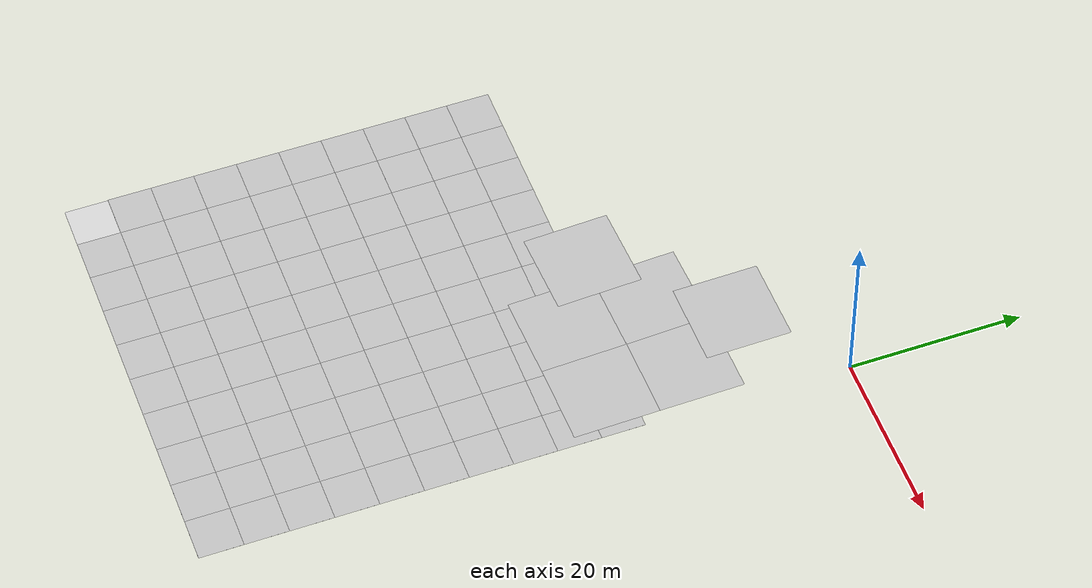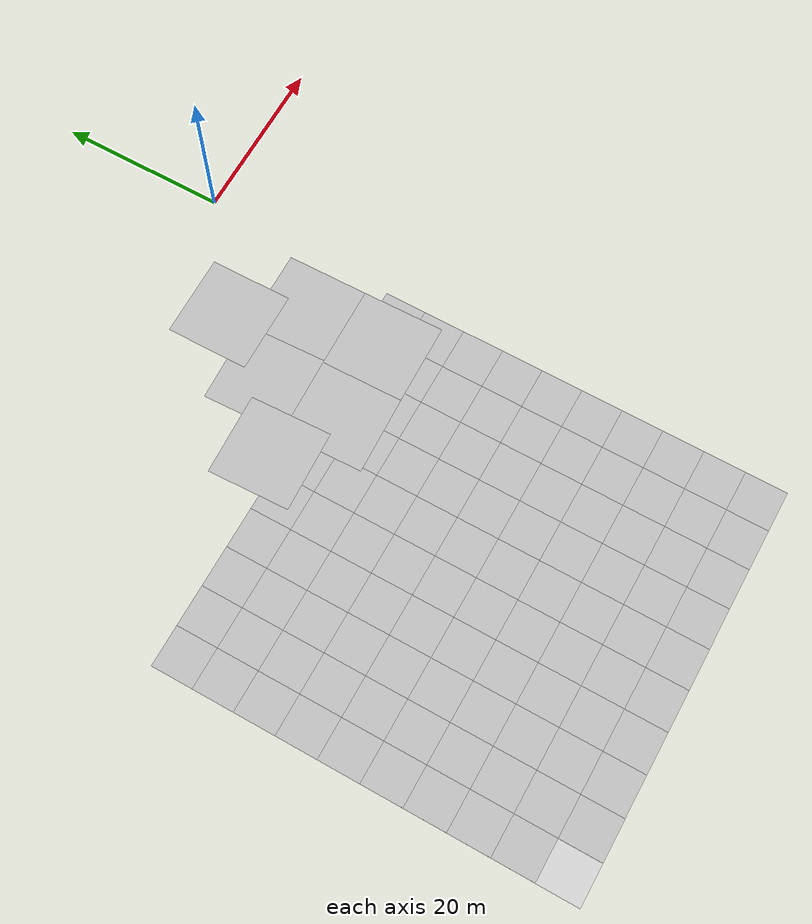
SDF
<sdf version="1.4">
 <world name="default">
  <model name="pavement_plane_2">
   <static>1</static>
   <link name="link">
    <collision name="collision">
     <geometry><plane><normal>0 0 1</normal><size>50 50</size></plane></geometry>
     <surface><friction><ode><mu>100</mu><mu2>50</mu2></ode></friction></surface>
    </collision>
    <visual name="visual_0">
     <pose>-25 -25 0 0 -0 0</pose>
     <cast_shadows>0</cast_shadows>
     <geometry><plane><normal>0 0 1</normal><size>5 5</size></plane></geometry>
     <material>
      <script>
       <uri>model://pavement_plane/materials/scripts</uri>
       <uri>model://pavement_plane/materials/textures</uri>
       <name>vrc/pavement</name>
      </script>
     </material>
    </visual>
    <visual name="visual_1">
     <pose>-20 -25 0 0 -0 0</pose>
     <cast_shadows>0</cast_shadows>
     <geometry><plane><normal>0 0 1</normal><size>5 5</size></plane></geometry>
     <material>
      <script>
       <uri>model://pavement_plane/materials/scripts</uri>
       <uri>model://pavement_plane/materials/textures</uri>
       <name>vrc/pavement</name>
      </script>
     </material>
    </visual>
    <visual name="visual_2">
     <pose>-15 -25 0 0 -0 0</pose>
     <cast_shadows>0</cast_shadows>
     <geometry><plane><normal>0 0 1</normal><size>5 5</size></plane></geometry>
     <material>
      <script>
       <uri>model://pavement_plane/materials/scripts</uri>
       <uri>model://pavement_plane/materials/textures</uri>
       <name>vrc/pavement</name>
      </script>
     </material>
    </visual>
    <visual name="visual_3">
     <pose>-10 -25 0 0 -0 0</pose>
     <cast_shadows>0</cast_shadows>
     <geometry><plane><normal>0 0 1</normal><size>5 5</size></plane></geometry>
     <material>
      <script>
       <uri>model://pavement_plane/materials/scripts</uri>
       <uri>model://pavement_plane/materials/textures</uri>
       <name>vrc/pavement</name>
      </script>
     </material>
    </visual>
    <visual name="visual_4">
     <pose>-5 -25 0 0 -0 0</pose>
     <cast_shadows>0</cast_shadows>
     <geometry><plane><normal>0 0 1</normal><size>5 5</size></plane></geometry>
     <material>
      <script>
       <uri>model://pavement_plane/materials/scripts</uri>
       <uri>model://pavement_plane/materials/textures</uri>
       <name>vrc/pavement</name>
      </script>
     </material>
    </visual>
    <visual name="visual_5">
     <pose>0 -25 0 0 -0 0</pose>
     <cast_shadows>0</cast_shadows>
     <geometry><plane><normal>0 0 1</normal><size>5 5</size></plane></geometry>
     <material>
      <script>
       <uri>model://pavement_plane/materials/scripts</uri>
       <uri>model://pavement_plane/materials/textures</uri>
       <name>vrc/pavement</name>
      </script>
     </material>
    </visual>
    <visual name="visual_6">
     <pose>5 -25 0 0 -0 0</pose>
     <cast_shadows>0</cast_shadows>
     <geometry><plane><normal>0 0 1</normal><size>5 5</size></plane></geometry>
     <material>
      <script>
       <uri>model://pavement_plane/materials/scripts</uri>
       <uri>model://pavement_plane/materials/textures</uri>
       <name>vrc/pavement</name>
      </script>
     </material>
    </visual>
    <visual name="visual_7">
     <pose>10 -25 0 0 -0 0</pose>
     <cast_shadows>0</cast_shadows>
     <geometry><plane><normal>0 0 1</normal><size>5 5</size></plane></geometry>
     <material>
      <script>
       <uri>model://pavement_plane/materials/scripts</uri>
       <uri>model://pavement_plane/materials/textures</uri>
       <name>vrc/pavement</name>
      </script>
     </material>
    </visual>
    <visual name="visual_8">
     <pose>15 -25 0 0 -0 0</pose>
     <cast_shadows>0</cast_shadows>
     <geometry><plane><normal>0 0 1</normal><size>5 5</size></plane></geometry>
     <material>
      <script>
       <uri>model://pavement_plane/materials/scripts</uri>
       <uri>model://pavement_plane/materials/textures</uri>
       <name>vrc/pavement</name>
      </script>
     </material>
    </visual>
    <visual name="visual_9">
     <pose>20 -25 0 0 -0 0</pose>
     <cast_shadows>0</cast_shadows>
     <geometry><plane><normal>0 0 1</normal><size>5 5</size></plane></geometry>
     <material>
      <script>
       <uri>model://pavement_plane/materials/scripts</uri>
       <uri>model://pavement_plane/materials/textures</uri>
       <name>vrc/pavement</name>
      </script>
     </material>
    </visual>
    <visual name="visual_10">
     <pose>-25 -20 0 0 -0 0</pose>
     <cast_shadows>0</cast_shadows>
     <geometry><plane><normal>0 0 1</normal><size>5 5</size></plane></geometry>
     <material>
      <script>
       <uri>model://pavement_plane/materials/scripts</uri>
       <uri>model://pavement_plane/materials/textures</uri>
       <name>vrc/pavement</name>
      </script>
     </material>
    </visual>
    <visual name="visual_11">
     <pose>-20 -20 0 0 -0 0</pose>
     <cast_shadows>0</cast_shadows>
     <geometry><plane><normal>0 0 1</normal><size>5 5</size></plane></geometry>
     <material>
      <script>
       <uri>model://pavement_plane/materials/scripts</uri>
       <uri>model://pavement_plane/materials/textures</uri>
       <name>vrc/pavement</name>
      </script>
     </material>
    </visual>
    <visual name="visual_12">
     <pose>-15 -20 0 0 -0 0</pose>
     <cast_shadows>0</cast_shadows>
     <geometry><plane><normal>0 0 1</normal><size>5 5</size></plane></geometry>
     <material>
      <script>
       <uri>model://pavement_plane/materials/scripts</uri>
       <uri>model://pavement_plane/materials/textures</uri>
       <name>vrc/pavement</name>
      </script>
     </material>
    </visual>
    <visual name="visual_13">
     <pose>-10 -20 0 0 -0 0</pose>
     <cast_shadows>0</cast_shadows>
     <geometry><plane><normal>0 0 1</normal><size>5 5</size></plane></geometry>
     <material>
      <script>
       <uri>model://pavement_plane/materials/scripts</uri>
       <uri>model://pavement_plane/materials/textures</uri>
       <name>vrc/pavement</name>
      </script>
     </material>
    </visual>
    <visual name="visual_14">
     <pose>-5 -20 0 0 -0 0</pose>
     <cast_shadows>0</cast_shadows>
     <geometry><plane><normal>0 0 1</normal><size>5 5</size></plane></geometry>
     <material>
      <script>
       <uri>model://pavement_plane/materials/scripts</uri>
       <uri>model://pavement_plane/materials/textures</uri>
       <name>vrc/pavement</name>
      </script>
     </material>
    </visual>
    <visual name="visual_15">
     <pose>0 -20 0 0 -0 0</pose>
     <cast_shadows>0</cast_shadows>
     <geometry><plane><normal>0 0 1</normal><size>5 5</size></plane></geometry>
     <material>
      <script>
       <uri>model://pavement_plane/materials/scripts</uri>
       <uri>model://pavement_plane/materials/textures</uri>
       <name>vrc/pavement</name>
      </script>
     </material>
    </visual>
    <visual name="visual_16">
     <pose>5 -20 0 0 -0 0</pose>
     <cast_shadows>0</cast_shadows>
     <geometry><plane><normal>0 0 1</normal><size>5 5</size></plane></geometry>
     <material>
      <script>
       <uri>model://pavement_plane/materials/scripts</uri>
       <uri>model://pavement_plane/materials/textures</uri>
       <name>vrc/pavement</name>
      </script>
     </material>
    </visual>
    <visual name="visual_17">
     <pose>10 -20 0 0 -0 0</pose>
     <cast_shadows>0</cast_shadows>
     <geometry><plane><normal>0 0 1</normal><size>5 5</size></plane></geometry>
     <material>
      <script>
       <uri>model://pavement_plane/materials/scripts</uri>
       <uri>model://pavement_plane/materials/textures</uri>
       <name>vrc/pavement</name>
      </script>
     </material>
    </visual>
    <visual name="visual_18">
     <pose>15 -20 0 0 -0 0</pose>
     <cast_shadows>0</cast_shadows>
     <geometry><plane><normal>0 0 1</normal><size>5 5</size></plane></geometry>
     <material>
      <script>
       <uri>model://pavement_plane/materials/scripts</uri>
       <uri>model://pavement_plane/materials/textures</uri>
       <name>vrc/pavement</name>
      </script>
     </material>
    </visual>
    <visual name="visual_19">
     <pose>20 -20 0 0 -0 0</pose>
     <cast_shadows>0</cast_shadows>
     <geometry><plane><normal>0 0 1</normal><size>5 5</size></plane></geometry>
     <material>
      <script>
       <uri>model://pavement_plane/materials/scripts</uri>
       <uri>model://pavement_plane/materials/textures</uri>
       <name>vrc/pavement</name>
      </script>
     </material>
    </visual>
    <visual name="visual_20">
     <pose>-25 -15 0 0 -0 0</pose>
     <cast_shadows>0</cast_shadows>
     <geometry><plane><normal>0 0 1</normal><size>5 5</size></plane></geometry>
     <material>
      <script>
       <uri>model://pavement_plane/materials/scripts</uri>
       <uri>model://pavement_plane/materials/textures</uri>
       <name>vrc/pavement</name>
      </script>
     </material>
    </visual>
    <visual name="visual_21">
     <pose>-20 -15 0 0 -0 0</pose>
     <cast_shadows>0</cast_shadows>
     <geometry><plane><normal>0 0 1</normal><size>5 5</size></plane></geometry>
     <material>
      <script>
       <uri>model://pavement_plane/materials/scripts</uri>
       <uri>model://pavement_plane/materials/textures</uri>
       <name>vrc/pavement</name>
      </script>
     </material>
    </visual>
    <visual name="visual_22">
     <pose>-15 -15 0 0 -0 0</pose>
     <cast_shadows>0</cast_shadows>
     <geometry><plane><normal>0 0 1</normal><size>5 5</size></plane></geometry>
     <material>
      <script>
       <uri>model://pavement_plane/materials/scripts</uri>
       <uri>model://pavement_plane/materials/textures</uri>
       <name>vrc/pavement</name>
      </script>
     </material>
    </visual>
    <visual name="visual_23">
     <pose>-10 -15 0 0 -0 0</pose>
     <cast_shadows>0</cast_shadows>
     <geometry><plane><normal>0 0 1</normal><size>5 5</size></plane></geometry>
     <material>
      <script>
       <uri>model://pavement_plane/materials/scripts</uri>
       <uri>model://pavement_plane/materials/textures</uri>
       <name>vrc/pavement</name>
      </script>
     </material>
    </visual>
    <visual name="visual_24">
     <pose>-5 -15 0 0 -0 0</pose>
     <cast_shadows>0</cast_shadows>
     <geometry><plane><normal>0 0 1</normal><size>5 5</size></plane></geometry>
     <material>
      <script>
       <uri>model://pavement_plane/materials/scripts</uri>
       <uri>model://pavement_plane/materials/textures</uri>
       <name>vrc/pavement</name>
      </script>
     </material>
    </visual>
    <visual name="visual_25">
     <pose>0 -15 0 0 -0 0</pose>
     <cast_shadows>0</cast_shadows>
     <geometry><plane><normal>0 0 1</normal><size>5 5</size></plane></geometry>
     <material>
      <script>
       <uri>model://pavement_plane/materials/scripts</uri>
       <uri>model://pavement_plane/materials/textures</uri>
       <name>vrc/pavement</name>
      </script>
     </material>
    </visual>
    <visual name="visual_26">
     <pose>5 -15 0 0 -0 0</pose>
     <cast_shadows>0</cast_shadows>
     <geometry><plane><normal>0 0 1</normal><size>5 5</size></plane></geometry>
     <material>
      <script>
       <uri>model://pavement_plane/materials/scripts</uri>
       <uri>model://pavement_plane/materials/textures</uri>
       <name>vrc/pavement</name>
      </script>
     </material>
    </visual>
    <visual name="visual_27">
     <pose>10 -15 0 0 -0 0</pose>
     <cast_shadows>0</cast_shadows>
     <geometry><plane><normal>0 0 1</normal><size>5 5</size></plane></geometry>
     <material>
      <script>
       <uri>model://pavement_plane/materials/scripts</uri>
       <uri>model://pavement_plane/materials/textures</uri>
       <name>vrc/pavement</name>
      </script>
     </material>
    </visual>
    <visual name="visual_28">
     <pose>15 -15 0 0 -0 0</pose>
     <cast_shadows>0</cast_shadows>
     <geometry><plane><normal>0 0 1</normal><size>5 5</size></plane></geometry>
     <material>
      <script>
       <uri>model://pavement_plane/materials/scripts</uri>
       <uri>model://pavement_plane/materials/textures</uri>
       <name>vrc/pavement</name>
      </script>
     </material>
    </visual>
    <visual name="visual_29">
     <pose>20 -15 0 0 -0 0</pose>
     <cast_shadows>0</cast_shadows>
     <geometry><plane><normal>0 0 1</normal><size>5 5</size></plane></geometry>
     <material>
      <script>
       <uri>model://pavement_plane/materials/scripts</uri>
       <uri>model://pavement_plane/materials/textures</uri>
       <name>vrc/pavement</name>
      </script>
     </material>
    </visual>
    <visual name="visual_30">
     <pose>-25 -10 0 0 -0 0</pose>
     <cast_shadows>0</cast_shadows>
     <geometry><plane><normal>0 0 1</normal><size>5 5</size></plane></geometry>
     <material>
      <script>
       <uri>model://pavement_plane/materials/scripts</uri>
       <uri>model://pavement_plane/materials/textures</uri>
       <name>vrc/pavement</name>
      </script>
     </material>
    </visual>
    <visual name="visual_31">
     <pose>-20 -10 0 0 -0 0</pose>
     <cast_shadows>0</cast_shadows>
     <geometry><plane><normal>0 0 1</normal><size>5 5</size></plane></geometry>
     <material>
      <script>
       <uri>model://pavement_plane/materials/scripts</uri>
       <uri>model://pavement_plane/materials/textures</uri>
       <name>vrc/pavement</name>
      </script>
     </material>
    </visual>
    <visual name="visual_32">
     <pose>-15 -10 0 0 -0 0</pose>
     <cast_shadows>0</cast_shadows>
     <geometry><plane><normal>0 0 1</normal><size>5 5</size></plane></geometry>
     <material>
      <script>
       <uri>model://pavement_plane/materials/scripts</uri>
       <uri>model://pavement_plane/materials/textures</uri>
       <name>vrc/pavement</name>
      </script>
     </material>
    </visual>
    <visual name="visual_33">
     <pose>-10 -10 0 0 -0 0</pose>
     <cast_shadows>0</cast_shadows>
     <geometry><plane><normal>0 0 1</normal><size>5 5</size></plane></geometry>
     <material>
      <script>
       <uri>model://pavement_plane/materials/scripts</uri>
       <uri>model://pavement_plane/materials/textures</uri>
       <name>vrc/pavement</name>
      </script>
     </material>
    </visual>
    <visual name="visual_34">
     <pose>-5 -10 0 0 -0 0</pose>
     <cast_shadows>0</cast_shadows>
     <geometry><plane><normal>0 0 1</normal><size>5 5</size></plane></geometry>
     <material>
      <script>
       <uri>model://pavement_plane/materials/scripts</uri>
       <uri>model://pavement_plane/materials/textures</uri>
       <name>vrc/pavement</name>
      </script>
     </material>
    </visual>
    <visual name="visual_35">
     <pose>0 -10 0 0 -0 0</pose>
     <cast_shadows>0</cast_shadows>
     <geometry><plane><normal>0 0 1</normal><size>5 5</size></plane></geometry>
     <material>
      <script>
       <uri>model://pavement_plane/materials/scripts</uri>
       <uri>model://pavement_plane/materials/textures</uri>
       <name>vrc/pavement</name>
      </script>
     </material>
    </visual>
    <visual name="visual_36">
     <pose>5 -10 0 0 -0 0</pose>
     <cast_shadows>0</cast_shadows>
     <geometry><plane><normal>0 0 1</normal><size>5 5</size></plane></geometry>
     <material>
      <script>
       <uri>model://pavement_plane/materials/scripts</uri>
       <uri>model://pavement_plane/materials/textures</uri>
       <name>vrc/pavement</name>
      </script>
     </material>
    </visual>
    <visual name="visual_37">
     <pose>10 -10 0 0 -0 0</pose>
     <cast_shadows>0</cast_shadows>
     <geometry><plane><normal>0 0 1</normal><size>5 5</size></plane></geometry>
     <material>
      <script>
       <uri>model://pavement_plane/materials/scripts</uri>
       <uri>model://pavement_plane/materials/textures</uri>
       <name>vrc/pavement</name>
      </script>
     </material>
    </visual>
    <visual name="visual_38">
     <pose>15 -10 0 0 -0 0</pose>
     <cast_shadows>0</cast_shadows>
     <geometry><plane><normal>0 0 1</normal><size>5 5</size></plane></geometry>
     <material>
      <script>
       <uri>model://pavement_plane/materials/scripts</uri>
       <uri>model://pavement_plane/materials/textures</uri>
       <name>vrc/pavement</name>
      </script>
     </material>
    </visual>
    <visual name="visual_39">
     <pose>20 -10 0 0 -0 0</pose>
     <cast_shadows>0</cast_shadows>
     <geometry><plane><normal>0 0 1</normal><size>5 5</size></plane></geometry>
     <material>
      <script>
       <uri>model://pavement_plane/materials/scripts</uri>
       <uri>model://pavement_plane/materials/textures</uri>
       <name>vrc/pavement</name>
      </script>
     </material>
    </visual>
    <visual name="visual_40">
     <pose>-25 -5 0 0 -0 0</pose>
     <cast_shadows>0</cast_shadows>
     <geometry><plane><normal>0 0 1</normal><size>5 5</size></plane></geometry>
     <material>
      <script>
       <uri>model://pavement_plane/materials/scripts</uri>
       <uri>model://pavement_plane/materials/textures</uri>
       <name>vrc/pavement</name>
      </script>
     </material>
    </visual>
    <visual name="visual_41">
     <pose>-20 -5 0 0 -0 0</pose>
     <cast_shadows>0</cast_shadows>
     <geometry><plane><normal>0 0 1</normal><size>5 5</size></plane></geometry>
     <material>
      <script>
       <uri>model://pavement_plane/materials/scripts</uri>
       <uri>model://pavement_plane/materials/textures</uri>
       <name>vrc/pavement</name>
      </script>
     </material>
    </visual>
    <visual name="visual_42">
     <pose>-15 -5 0 0 -0 0</pose>
     <cast_shadows>0</cast_shadows>
     <geometry><plane><normal>0 0 1</normal><size>5 5</size></plane></geometry>
     <material>
      <script>
       <uri>model://pavement_plane/materials/scripts</uri>
       <uri>model://pavement_plane/materials/textures</uri>
       <name>vrc/pavement</name>
      </script>
     </material>
    </visual>
    <visual name="visual_43">
     <pose>-10 -5 0 0 -0 0</pose>
     <cast_shadows>0</cast_shadows>
     <geometry><plane><normal>0 0 1</normal><size>5 5</size></plane></geometry>
     <material>
      <script>
       <uri>model://pavement_plane/materials/scripts</uri>
       <uri>model://pavement_plane/materials/textures</uri>
       <name>vrc/pavement</name>
      </script>
     </material>
    </visual>
    <visual name="visual_44">
     <pose>-5 -5 0 0 -0 0</pose>
     <cast_shadows>0</cast_shadows>
     <geometry><plane><normal>0 0 1</normal><size>5 5</size></plane></geometry>
     <material>
      <script>
       <uri>model://pavement_plane/materials/scripts</uri>
       <uri>model://pavement_plane/materials/textures</uri>
       <name>vrc/pavement</name>
      </script>
     </material>
    </visual>
    <visual name="visual_45">
     <pose>0 -5 0 0 -0 0</pose>
     <cast_shadows>0</cast_shadows>
     <geometry><plane><normal>0 0 1</normal><size>5 5</size></plane></geometry>
     <material>
      <script>
       <uri>model://pavement_plane/materials/scripts</uri>
       <uri>model://pavement_plane/materials/textures</uri>
       <name>vrc/pavement</name>
      </script>
     </material>
    </visual>
    <visual name="visual_46">
     <pose>5 -5 0 0 -0 0</pose>
     <cast_shadows>0</cast_shadows>
     <geometry><plane><normal>0 0 1</normal><size>5 5</size></plane></geometry>
     <material>
      <script>
       <uri>model://pavement_plane/materials/scripts</uri>
       <uri>model://pavement_plane/materials/textures</uri>
       <name>vrc/pavement</name>
      </script>
     </material>
    </visual>
    <visual name="visual_47">
     <pose>10 -5 0 0 -0 0</pose>
     <cast_shadows>0</cast_shadows>
     <geometry><plane><normal>0 0 1</normal><size>5 5</size></plane></geometry>
     <material>
      <script>
       <uri>model://pavement_plane/materials/scripts</uri>
       <uri>model://pavement_plane/materials/textures</uri>
       <name>vrc/pavement</name>
      </script>
     </material>
    </visual>
    <visual name="visual_48">
     <pose>15 -5 0 0 -0 0</pose>
     <cast_shadows>0</cast_shadows>
     <geometry><plane><normal>0 0 1</normal><size>5 5</size></plane></geometry>
     <material>
      <script>
       <uri>model://pavement_plane/materials/scripts</uri>
       <uri>model://pavement_plane/materials/textures</uri>
       <name>vrc/pavement</name>
      </script>
     </material>
    </visual>
    <visual name="visual_49">
     <pose>20 -5 0 0 -0 0</pose>
     <cast_shadows>0</cast_shadows>
     <geometry><plane><normal>0 0 1</normal><size>5 5</size></plane></geometry>
     <material>
      <script>
       <uri>model://pavement_plane/materials/scripts</uri>
       <uri>model://pavement_plane/materials/textures</uri>
       <name>vrc/pavement</name>
      </script>
     </material>
    </visual>
    <visual name="visual_50">
     <pose>-25 0 0 0 -0 0</pose>
     <cast_shadows>0</cast_shadows>
     <geometry><plane><normal>0 0 1</normal><size>5 5</size></plane></geometry>
     <material>
      <script>
       <uri>model://pavement_plane/materials/scripts</uri>
       <uri>model://pavement_plane/materials/textures</uri>
       <name>vrc/pavement</name>
      </script>
     </material>
    </visual>
    <visual name="visual_51">
     <pose>-20 0 0 0 -0 0</pose>
     <cast_shadows>0</cast_shadows>
     <geometry><plane><normal>0 0 1</normal><size>5 5</size></plane></geometry>
     <material>
      <script>
       <uri>model://pavement_plane/materials/scripts</uri>
       <uri>model://pavement_plane/materials/textures</uri>
       <name>vrc/pavement</name>
      </script>
     </material>
    </visual>
    <visual name="visual_52">
     <pose>-15 0 0 0 -0 0</pose>
     <cast_shadows>0</cast_shadows>
     <geometry><plane><normal>0 0 1</normal><size>5 5</size></plane></geometry>
     <material>
      <script>
       <uri>model://pavement_plane/materials/scripts</uri>
       <uri>model://pavement_plane/materials/textures</uri>
       <name>vrc/pavement</name>
      </script>
     </material>
    </visual>
    <visual name="visual_53">
     <pose>-10 0 0 0 -0 0</pose>
     <cast_shadows>0</cast_shadows>
     <geometry><plane><normal>0 0 1</normal><size>5 5</size></plane></geometry>
     <material>
      <script>
       <uri>model://pavement_plane/materials/scripts</uri>
       <uri>model://pavement_plane/materials/textures</uri>
       <name>vrc/pavement</name>
      </script>
     </material>
    </visual>
    <visual name="visual_54">
     <pose>-5 0 0 0 -0 0</pose>
     <cast_shadows>0</cast_shadows>
     <geometry><plane><normal>0 0 1</normal><size>5 5</size></plane></geometry>
     <material>
      <script>
       <uri>model://pavement_plane/materials/scripts</uri>
       <uri>model://pavement_plane/materials/textures</uri>
       <name>vrc/pavement</name>
      </script>
     </material>
    </visual>
    <visual name="visual_55">
     <cast_shadows>0</cast_shadows>
     <geometry><plane><normal>0 0 1</normal><size>5 5</size></plane></geometry>
     <material>
      <script>
       <uri>model://pavement_plane/materials/scripts</uri>
       <uri>model://pavement_plane/materials/textures</uri>
       <name>vrc/pavement</name>
      </script>
     </material>
    </visual>
    <visual name="visual_56">
     <pose>5 0 0 0 -0 0</pose>
     <cast_shadows>0</cast_shadows>
     <geometry><plane><normal>0 0 1</normal><size>5 5</size></plane></geometry>
     <material>
      <script>
       <uri>model://pavement_plane/materials/scripts</uri>
       <uri>model://pavement_plane/materials/textures</uri>
       <name>vrc/pavement</name>
      </script>
     </material>
    </visual>
    <visual name="visual_57">
     <pose>10 0 0 0 -0 0</pose>
     <cast_shadows>0</cast_shadows>
     <geometry><plane><normal>0 0 1</normal><size>5 5</size></plane></geometry>
     <material>
      <script>
       <uri>model://pavement_plane/materials/scripts</uri>
       <uri>model://pavement_plane/materials/textures</uri>
       <name>vrc/pavement</name>
      </script>
     </material>
    </visual>
    <visual name="visual_58">
     <pose>15 0 0 0 -0 0</pose>
     <cast_shadows>0</cast_shadows>
     <geometry><plane><normal>0 0 1</normal><size>5 5</size></plane></geometry>
     <material>
      <script>
       <uri>model://pavement_plane/materials/scripts</uri>
       <uri>model://pavement_plane/materials/textures</uri>
       <name>vrc/pavement</name>
      </script>
     </material>
    </visual>
    <visual name="visual_59">
     <pose>20 0 0 0 -0 0</pose>
     <cast_shadows>0</cast_shadows>
     <geometry><plane><normal>0 0 1</normal><size>5 5</size></plane></geometry>
     <material>
      <script>
       <uri>model://pavement_plane/materials/scripts</uri>
       <uri>model://pavement_plane/materials/textures</uri>
       <name>vrc/pavement</name>
      </script>
     </material>
    </visual>
    <visual name="visual_60">
     <pose>-25 5 0 0 -0 0</pose>
     <cast_shadows>0</cast_shadows>
     <geometry><plane><normal>0 0 1</normal><size>5 5</size></plane></geometry>
     <material>
      <script>
       <uri>model://pavement_plane/materials/scripts</uri>
       <uri>model://pavement_plane/materials/textures</uri>
       <name>vrc/pavement</name>
      </script>
     </material>
    </visual>
    <visual name="visual_61">
     <pose>-20 5 0 0 -0 0</pose>
     <cast_shadows>0</cast_shadows>
     <geometry><plane><normal>0 0 1</normal><size>5 5</size></plane></geometry>
     <material>
      <script>
       <uri>model://pavement_plane/materials/scripts</uri>
       <uri>model://pavement_plane/materials/textures</uri>
       <name>vrc/pavement</name>
      </script>
     </material>
    </visual>
    <visual name="visual_62">
     <pose>-15 5 0 0 -0 0</pose>
     <cast_shadows>0</cast_shadows>
     <geometry><plane><normal>0 0 1</normal><size>5 5</size></plane></geometry>
     <material>
      <script>
       <uri>model://pavement_plane/materials/scripts</uri>
       <uri>model://pavement_plane/materials/textures</uri>
       <name>vrc/pavement</name>
      </script>
     </material>
    </visual>
    <visual name="visual_63">
     <pose>-10 5 0 0 -0 0</pose>
     <cast_shadows>0</cast_shadows>
     <geometry><plane><normal>0 0 1</normal><size>5 5</size></plane></geometry>
     <material>
      <script>
       <uri>model://pavement_plane/materials/scripts</uri>
       <uri>model://pavement_plane/materials/textures</uri>
       <name>vrc/pavement</name>
      </script>
     </material>
    </visual>
    <visual name="visual_64">
     <pose>-5 5 0 0 -0 0</pose>
     <cast_shadows>0</cast_shadows>
     <geometry><plane><normal>0 0 1</normal><size>5 5</size></plane></geometry>
     <material>
      <script>
       <uri>model://pavement_plane/materials/scripts</uri>
       <uri>model://pavement_plane/materials/textures</uri>
       <name>vrc/pavement</name>
      </script>
     </material>
    </visual>
    <visual name="visual_65">
     <pose>0 5 0 0 -0 0</pose>
     <cast_shadows>0</cast_shadows>
     <geometry><plane><normal>0 0 1</normal><size>5 5</size></plane></geometry>
     <material>
      <script>
       <uri>model://pavement_plane/materials/scripts</uri>
       <uri>model://pavement_plane/materials/textures</uri>
       <name>vrc/pavement</name>
      </script>
     </material>
    </visual>
    <visual name="visual_66">
     <pose>5 5 0 0 -0 0</pose>
     <cast_shadows>0</cast_shadows>
     <geometry><plane><normal>0 0 1</normal><size>5 5</size></plane></geometry>
     <material>
      <script>
       <uri>model://pavement_plane/materials/scripts</uri>
       <uri>model://pavement_plane/materials/textures</uri>
       <name>vrc/pavement</name>
      </script>
     </material>
    </visual>
    <visual name="visual_67">
     <pose>10 5 0 0 -0 0</pose>
     <cast_shadows>0</cast_shadows>
     <geometry><plane><normal>0 0 1</normal><size>5 5</size></plane></geometry>
     <material>
      <script>
       <uri>model://pavement_plane/materials/scripts</uri>
       <uri>model://pavement_plane/materials/textures</uri>
       <name>vrc/pavement</name>
      </script>
     </material>
    </visual>
    <visual name="visual_68">
     <pose>15 5 0 0 -0 0</pose>
     <cast_shadows>0</cast_shadows>
     <geometry><plane><normal>0 0 1</normal><size>5 5</size></plane></geometry>
     <material>
      <script>
       <uri>model://pavement_plane/materials/scripts</uri>
       <uri>model://pavement_plane/materials/textures</uri>
       <name>vrc/pavement</name>
      </script>
     </material>
    </visual>
    <visual name="visual_69">
     <pose>20 5 0 0 -0 0</pose>
     <cast_shadows>0</cast_shadows>
     <geometry><plane><normal>0 0 1</normal><size>5 5</size></plane></geometry>
     <material>
      <script>
       <uri>model://pavement_plane/materials/scripts</uri>
       <uri>model://pavement_plane/materials/textures</uri>
       <name>vrc/pavement</name>
      </script>
     </material>
    </visual>
    <visual name="visual_70">
     <pose>-25 10 0 0 -0 0</pose>
     <cast_shadows>0</cast_shadows>
     <geometry><plane><normal>0 0 1</normal><size>5 5</size></plane></geometry>
     <material>
      <script>
       <uri>model://pavement_plane/materials/scripts</uri>
       <uri>model://pavement_plane/materials/textures</uri>
       <name>vrc/pavement</name>
      </script>
     </material>
    </visual>
    <visual name="visual_71">
     <pose>-20 10 0 0 -0 0</pose>
     <cast_shadows>0</cast_shadows>
     <geometry><plane><normal>0 0 1</normal><size>5 5</size></plane></geometry>
     <material>
      <script>
       <uri>model://pavement_plane/materials/scripts</uri>
       <uri>model://pavement_plane/materials/textures</uri>
       <name>vrc/pavement</name>
      </script>
     </material>
    </visual>
    <visual name="visual_72">
     <pose>-15 10 0 0 -0 0</pose>
     <cast_shadows>0</cast_shadows>
     <geometry><plane><normal>0 0 1</normal><size>5 5</size></plane></geometry>
     <material>
      <script>
       <uri>model://pavement_plane/materials/scripts</uri>
       <uri>model://pavement_plane/materials/textures</uri>
       <name>vrc/pavement</name>
      </script>
     </material>
    </visual>
    <visual name="visual_73">
     <pose>-10 10 0 0 -0 0</pose>
     <cast_shadows>0</cast_shadows>
     <geometry><plane><normal>0 0 1</normal><size>5 5</size></plane></geometry>
     <material>
      <script>
       <uri>model://pavement_plane/materials/scripts</uri>
       <uri>model://pavement_plane/materials/textures</uri>
       <name>vrc/pavement</name>
      </script>
     </material>
    </visual>
    <visual name="visual_74">
     <pose>-5 10 0 0 -0 0</pose>
     <cast_shadows>0</cast_shadows>
     <geometry><plane><normal>0 0 1</normal><size>5 5</size></plane></geometry>
     <material>
      <script>
       <uri>model://pavement_plane/materials/scripts</uri>
       <uri>model://pavement_plane/materials/textures</uri>
       <name>vrc/pavement</name>
      </script>
     </material>
    </visual>
    <visual name="visual_75">
     <pose>0 10 0 0 -0 0</pose>
     <cast_shadows>0</cast_shadows>
     <geometry><plane><normal>0 0 1</normal><size>5 5</size></plane></geometry>
     <material>
      <script>
       <uri>model://pavement_plane/materials/scripts</uri>
       <uri>model://pavement_plane/materials/textures</uri>
       <name>vrc/pavement</name>
      </script>
     </material>
    </visual>
    <visual name="visual_76">
     <pose>5 10 0 0 -0 0</pose>
     <cast_shadows>0</cast_shadows>
     <geometry><plane><normal>0 0 1</normal><size>5 5</size></plane></geometry>
     <material>
      <script>
       <uri>model://pavement_plane/materials/scripts</uri>
       <uri>model://pavement_plane/materials/textures</uri>
       <name>vrc/pavement</name>
      </script>
     </material>
    </visual>
    <visual name="visual_77">
     <pose>10 10 0 0 -0 0</pose>
     <cast_shadows>0</cast_shadows>
     <geometry><plane><normal>0 0 1</normal><size>5 5</size></plane></geometry>
     <material>
      <script>
       <uri>model://pavement_plane/materials/scripts</uri>
       <uri>model://pavement_plane/materials/textures</uri>
       <name>vrc/pavement</name>
      </script>
     </material>
    </visual>
    <visual name="visual_78">
     <pose>15 10 0 0 -0 0</pose>
     <cast_shadows>0</cast_shadows>
     <geometry><plane><normal>0 0 1</normal><size>5 5</size></plane></geometry>
     <material>
      <script>
       <uri>model://pavement_plane/materials/scripts</uri>
       <uri>model://pavement_plane/materials/textures</uri>
       <name>vrc/pavement</name>
      </script>
     </material>
    </visual>
    <visual name="visual_79">
     <pose>20 10 0 0 -0 0</pose>
     <cast_shadows>0</cast_shadows>
     <geometry><plane><normal>0 0 1</normal><size>5 5</size></plane></geometry>
     <material>
      <script>
       <uri>model://pavement_plane/materials/scripts</uri>
       <uri>model://pavement_plane/materials/textures</uri>
       <name>vrc/pavement</name>
      </script>
     </material>
    </visual>
    <visual name="visual_80">
     <pose>-25 15 0 0 -0 0</pose>
     <cast_shadows>0</cast_shadows>
     <geometry><plane><normal>0 0 1</normal><size>5 5</size></plane></geometry>
     <material>
      <script>
       <uri>model://pavement_plane/materials/scripts</uri>
       <uri>model://pavement_plane/materials/textures</uri>
       <name>vrc/pavement</name>
      </script>
     </material>
    </visual>
    <visual name="visual_81">
     <pose>-20 15 0 0 -0 0</pose>
     <cast_shadows>0</cast_shadows>
     <geometry><plane><normal>0 0 1</normal><size>5 5</size></plane></geometry>
     <material>
      <script>
       <uri>model://pavement_plane/materials/scripts</uri>
       <uri>model://pavement_plane/materials/textures</uri>
       <name>vrc/pavement</name>
      </script>
     </material>
    </visual>
    <visual name="visual_82">
     <pose>-15 15 0 0 -0 0</pose>
     <cast_shadows>0</cast_shadows>
     <geometry><plane><normal>0 0 1</normal><size>5 5</size></plane></geometry>
     <material>
      <script>
       <uri>model://pavement_plane/materials/scripts</uri>
       <uri>model://pavement_plane/materials/textures</uri>
       <name>vrc/pavement</name>
      </script>
     </material>
    </visual>
    <visual name="visual_83">
     <pose>-10 15 0 0 -0 0</pose>
     <cast_shadows>0</cast_shadows>
     <geometry><plane><normal>0 0 1</normal><size>5 5</size></plane></geometry>
     <material>
      <script>
       <uri>model://pavement_plane/materials/scripts</uri>
       <uri>model://pavement_plane/materials/textures</uri>
       <name>vrc/pavement</name>
      </script>
     </material>
    </visual>
    <visual name="visual_84">
     <pose>-5 15 0 0 -0 0</pose>
     <cast_shadows>0</cast_shadows>
     <geometry><plane><normal>0 0 1</normal><size>5 5</size></plane></geometry>
     <material>
      <script>
       <uri>model://pavement_plane/materials/scripts</uri>
       <uri>model://pavement_plane/materials/textures</uri>
       <name>vrc/pavement</name>
      </script>
     </material>
    </visual>
    <visual name="visual_85">
     <pose>0 15 0 0 -0 0</pose>
     <cast_shadows>0</cast_shadows>
     <geometry><plane><normal>0 0 1</normal><size>5 5</size></plane></geometry>
     <material>
      <script>
       <uri>model://pavement_plane/materials/scripts</uri>
       <uri>model://pavement_plane/materials/textures</uri>
       <name>vrc/pavement</name>
      </script>
     </material>
    </visual>
    <visual name="visual_86">
     <pose>5 15 0 0 -0 0</pose>
     <cast_shadows>0</cast_shadows>
     <geometry><plane><normal>0 0 1</normal><size>5 5</size></plane></geometry>
     <material>
      <script>
       <uri>model://pavement_plane/materials/scripts</uri>
       <uri>model://pavement_plane/materials/textures</uri>
       <name>vrc/pavement</name>
      </script>
     </material>
    </visual>
    <visual name="visual_87">
     <pose>10 15 0 0 -0 0</pose>
     <cast_shadows>0</cast_shadows>
     <geometry><plane><normal>0 0 1</normal><size>5 5</size></plane></geometry>
     <material>
      <script>
       <uri>model://pavement_plane/materials/scripts</uri>
       <uri>model://pavement_plane/materials/textures</uri>
       <name>vrc/pavement</name>
      </script>
     </material>
    </visual>
    <visual name="visual_88">
     <pose>15 15 0 0 -0 0</pose>
     <cast_shadows>0</cast_shadows>
     <geometry><plane><normal>0 0 1</normal><size>5 5</size></plane></geometry>
     <material>
      <script>
       <uri>model://pavement_plane/materials/scripts</uri>
       <uri>model://pavement_plane/materials/textures</uri>
       <name>vrc/pavement</name>
      </script>
     </material>
    </visual>
    <visual name="visual_89">
     <pose>20 15 0 0 -0 0</pose>
     <cast_shadows>0</cast_shadows>
     <geometry><plane><normal>0 0 1</normal><size>5 5</size></plane></geometry>
     <material>
      <script>
       <uri>model://pavement_plane/materials/scripts</uri>
       <uri>model://pavement_plane/materials/textures</uri>
       <name>vrc/pavement</name>
      </script>
     </material>
    </visual>
    <visual name="visual_90">
     <pose>-25 20 0 0 -0 0</pose>
     <cast_shadows>0</cast_shadows>
     <geometry><plane><normal>0 0 1</normal><size>5 5</size></plane></geometry>
     <material>
      <script>
       <uri>model://pavement_plane/materials/scripts</uri>
       <uri>model://pavement_plane/materials/textures</uri>
       <name>vrc/pavement</name>
      </script>
     </material>
    </visual>
    <visual name="visual_91">
     <pose>-20 20 0 0 -0 0</pose>
     <cast_shadows>0</cast_shadows>
     <geometry><plane><normal>0 0 1</normal><size>5 5</size></plane></geometry>
     <material>
      <script>
       <uri>model://pavement_plane/materials/scripts</uri>
       <uri>model://pavement_plane/materials/textures</uri>
       <name>vrc/pavement</name>
      </script>
     </material>
    </visual>
    <visual name="visual_92">
     <pose>-15 20 0 0 -0 0</pose>
     <cast_shadows>0</cast_shadows>
     <geometry><plane><normal>0 0 1</normal><size>5 5</size></plane></geometry>
     <material>
      <script>
       <uri>model://pavement_plane/materials/scripts</uri>
       <uri>model://pavement_plane/materials/textures</uri>
       <name>vrc/pavement</name>
      </script>
     </material>
    </visual>
    <visual name="visual_93">
     <pose>-10 20 0 0 -0 0</pose>
     <cast_shadows>0</cast_shadows>
     <geometry><plane><normal>0 0 1</normal><size>5 5</size></plane></geometry>
     <material>
      <script>
       <uri>model://pavement_plane/materials/scripts</uri>
       <uri>model://pavement_plane/materials/textures</uri>
       <name>vrc/pavement</name>
      </script>
     </material>
    </visual>
    <visual name="visual_94">
     <pose>-5 20 0 0 -0 0</pose>
     <cast_shadows>0</cast_shadows>
     <geometry><plane><normal>0 0 1</normal><size>5 5</size></plane></geometry>
     <material>
      <script>
       <uri>model://pavement_plane/materials/scripts</uri>
       <uri>model://pavement_plane/materials/textures</uri>
       <name>vrc/pavement</name>
      </script>
     </material>
    </visual>
    <visual name="visual_95">
     <pose>0 20 0 0 -0 0</pose>
     <cast_shadows>0</cast_shadows>
     <geometry><plane><normal>0 0 1</normal><size>5 5</size></plane></geometry>
     <material>
      <script>
       <uri>model://pavement_plane/materials/scripts</uri>
       <uri>model://pavement_plane/materials/textures</uri>
       <name>vrc/pavement</name>
      </script>
     </material>
    </visual>
    <visual name="visual_96">
     <pose>5 20 0 0 -0 0</pose>
     <cast_shadows>0</cast_shadows>
     <geometry><plane><normal>0 0 1</normal><size>5 5</size></plane></geometry>
     <material>
      <script>
       <uri>model://pavement_plane/materials/scripts</uri>
       <uri>model://pavement_plane/materials/textures</uri>
       <name>vrc/pavement</name>
      </script>
     </material>
    </visual>
    <visual name="visual_97">
     <pose>10 20 0 0 -0 0</pose>
     <cast_shadows>0</cast_shadows>
     <geometry><plane><normal>0 0 1</normal><size>5 5</size></plane></geometry>
     <material>
      <script>
       <uri>model://pavement_plane/materials/scripts</uri>
       <uri>model://pavement_plane/materials/textures</uri>
       <name>vrc/pavement</name>
      </script>
     </material>
    </visual>
    <visual name="visual_98">
     <pose>15 20 0 0 -0 0</pose>
     <cast_shadows>0</cast_shadows>
     <geometry><plane><normal>0 0 1</normal><size>5 5</size></plane></geometry>
     <material>
      <script>
       <uri>model://pavement_plane/materials/scripts</uri>
       <uri>model://pavement_plane/materials/textures</uri>
       <name>vrc/pavement</name>
      </script>
     </material>
    </visual>
    <visual name="visual_99">
     <pose>20 20 0 0 -0 0</pose>
     <cast_shadows>0</cast_shadows>
     <geometry><plane><normal>0 0 1</normal><size>5 5</size></plane></geometry>
     <material>
      <script>
       <uri>model://pavement_plane/materials/scripts</uri>
       <uri>model://pavement_plane/materials/textures</uri>
       <name>vrc/pavement</name>
      </script>
     </material>
    </visual>
    <velocity_decay><linear>0</linear><angular>0</angular></velocity_decay>
   </link>
   <pose>-23 -46 0 0 -0 0</pose>
  </model>
  <model name="Road_straight_16">
   <static>1</static>
   <pose>-11.6196 -8.97158 0 0 0 -1.56</pose>
   <link name="link">
    <visual name="visual">
     <pose>0 0 0.04 0 -0 0</pose>
     <geometry>
      <mesh><uri>model://Road_straight/models/Road 01.dae</uri><scale>0.39 0.39 1</scale></mesh>
     </geometry>
    </visual>
    <velocity_decay><linear>0</linear><angular>0</angular></velocity_decay>
   </link>
  </model>
  <model name="Road_hard_curve_6">
   <static>1</static>
   <pose>-7.90177 -17.145 -0.01 0 0 -1.55682</pose>
   <link name="link">
    <visual name="visual">
     <pose>0 0 0.04 0 -0 0</pose>
     <geometry>
      <mesh><uri>model://Road_hard_curve/models/Road 09.dae</uri><scale>0.39 0.39 1</scale></mesh>
     </geometry>
    </visual>
    <velocity_decay><linear>0</linear><angular>0</angular></velocity_decay>
   </link>
  </model>
  <model name="Road_hard_curve_7">
   <static>1</static>
   <pose>-15.9331 -17.9911 -0.01 0 -0 0.04</pose>
   <link name="link">
    <visual name="visual">
     <pose>0 0 0.04 0 -0 0</pose>
     <geometry>
      <mesh><uri>model://Road_hard_curve/models/Road 09.dae</uri><scale>0.39 0.39 1</scale></mesh>
     </geometry>
    </visual>
    <velocity_decay><linear>0</linear><angular>0</angular></velocity_decay>
   </link>
  </model>
  <model name="Road_hard_curve_8">
   <static>1</static>
   <pose>-15.0163 -26.0756 0 0 -0 1.60319</pose>
   <link name="link">
    <visual name="visual">
     <pose>0 0 0.04 0 -0 0</pose>
     <geometry>
      <mesh><uri>model://Road_hard_curve/models/Road 09.dae</uri><scale>0.39 0.39 1</scale></mesh>
     </geometry>
    </visual>
    <velocity_decay><linear>0</linear><angular>0</angular></velocity_decay>
   </link>
  </model>
  <model name="Road_hard_curve_9">
   <static>1</static>
   <pose>-7.1414 -25.2362 0 0 0 -3.12318</pose>
   <link name="link">
    <visual name="visual">
     <pose>0 0 0.04 0 -0 0</pose>
     <geometry>
      <mesh><uri>model://Road_hard_curve/models/Road 09.dae</uri><scale>0.39 0.39 1</scale></mesh>
     </geometry>
    </visual>
    <velocity_decay><linear>0</linear><angular>0</angular></velocity_decay>
   </link>
  </model>
  <model name="Road_straight_19">
   <static>1</static>
   <pose>-24.1242 -21.9851 0.03 0 -0 0.04</pose>
   <link name="link">
    <visual name="visual">
     <pose>0 0 0.04 0 -0 0</pose>
     <geometry>
      <mesh><uri>model://Road_straight/models/Road 01.dae</uri><scale>0.39 0.39 1</scale></mesh>
     </geometry>
    </visual>
    <velocity_decay><linear>0</linear><angular>0</angular></velocity_decay>
   </link>
  </model>
 </world>
</sdf>
